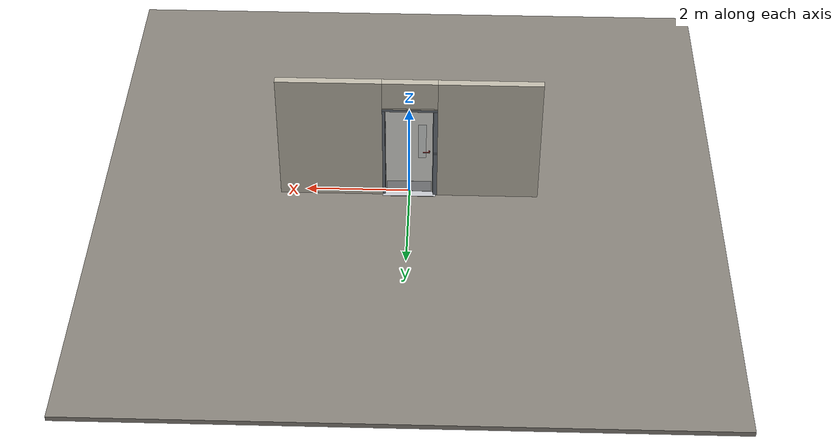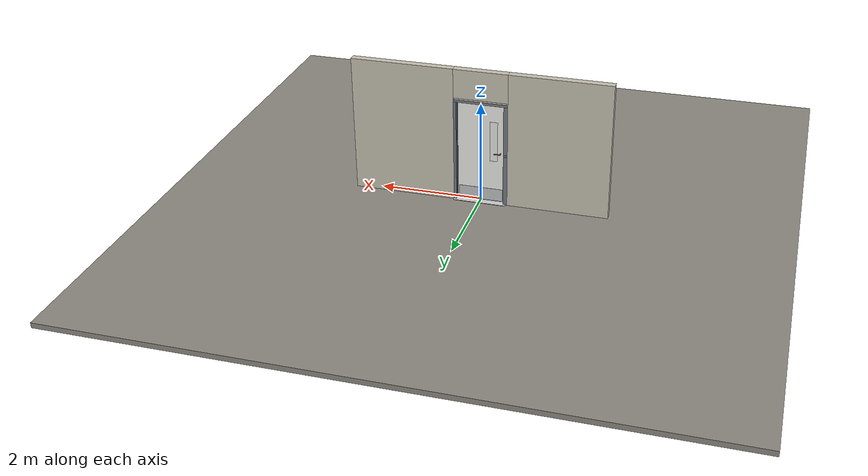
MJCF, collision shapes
<?xml version="1.0" ?>
<mujoco model="db0155_swing_single_full">
  <compiler angle="radian" meshdir="../../hardware" texturedir="../../textures" autolimits="true" inertiafromgeom="false"/>
  <option timestep="0.002" integrator="implicitfast" cone="elliptic" impratio="10" noslip_iterations="3">
    <flag multiccd="enable"/>
  </option>
  <size memory="16M"/>
  <default>
    <geom condim="4" solref="0.005 1" solimp="0.95 0.99 0.001"/>
    <joint solreflimit="0.005 1" solimplimit="0.95 0.99 0.001"/>
    <tendon solreflimit="0.005 1"/>
    <equality solref="0.002 1"/>
  </default>
  <visual>
    <headlight ambient="0.4 0.4 0.4" diffuse="0.7 0.7 0.7" specular="0.2 0.2 0.2"/>
    <quality shadowsize="4096"/>
    <map znear="0.01" zfar="60"/>
  </visual>
  <asset>
    <mesh name="hinge_e22b26c0c1" file="hinge_e22b26c0c1.obj"/>
    <mesh name="hinge_jamb_e1d088f8dc" file="hinge_jamb_e1d088f8dc.obj"/>
    <mesh name="lever_9f02b544cf" file="lever_9f02b544cf.obj"/>
    <material name="mat_floor" rgba="0.55 0.53 0.5 1" specular="0.2" shininess="0.15" reflectance="0"/>
    <material name="mat_wall" rgba="0.78 0.76 0.7 1" specular="0.2" shininess="0.1" reflectance="0"/>
    <material name="mat_leaf" rgba="0.93 0.93 0.91 1" specular="0.23" shininess="0.58" reflectance="0.02"/>
    <material name="mat_glass" rgba="0.85 0.92 0.95 0.25" specular="0.2" shininess="0.95" reflectance="0.1"/>
    <material name="mat_hinge" rgba="0.65 0.66 0.68 1" specular="0.74" shininess="0.5" reflectance="0.36"/>
    <material name="mat_op_nickel_satin" rgba="0.72 0.7 0.66 1" specular="0.8" shininess="0.65" reflectance="0.4"/>
    <material name="mat_trim" rgba="0.85 0.66 0.3 1" specular="0.8" shininess="0.75" reflectance="0.4"/>
    <material name="mat_keyway" rgba="0.05 0.05 0.05 1" specular="0.2" shininess="0.5" reflectance="0"/>
    <material name="mat_bolt" rgba="0.85 0.66 0.3 1" specular="0.8" shininess="0.75" reflectance="0.4"/>
    <material name="mat_frame" rgba="0.45 0.48 0.52 1" specular="0.32" shininess="0.6" reflectance="0.08"/>
    <material name="mat_threshold" rgba="0.8 0.81 0.83 1" specular="0.8" shininess="0.6" reflectance="0.4"/>
    <material name="mat_kick" rgba="0.75 0.76 0.77 1" specular="0.8" shininess="0.65" reflectance="0.4"/>
    <texture name="skybox" type="skybox" builtin="gradient" rgb1="0.6 0.7 0.85" rgb2="0.9 0.92 0.95" width="256" height="256"/>
  </asset>
  <worldbody>
    <light name="sun" pos="1.5 -2.5 4" dir="-0.3 0.5 -0.8" directional="true" diffuse="0.8 0.8 0.8" specular="0.3 0.3 0.3" castshadow="true"/>
    <light name="fill" pos="-1.5 2.5 3" dir="0.3 -0.5 -0.7" directional="true" diffuse="0.35 0.35 0.4" castshadow="false"/>
    <camera name="robot_view" pos="0 -2.498687 1.734312" xyaxes="1 0 0 0 0.26963 0.962964" fovy="52"/>
    <camera name="far_view" pos="0 2.585687 1.734312" xyaxes="-1 0 0 0 -0.26963 0.962964" fovy="52"/>
    <camera name="iso" pos="-1.932062 -2.091938 2.141063" xyaxes="0.741536 -0.670913 0 0.242917 0.268487 0.932151" fovy="46"/>
    <camera name="detail_handle" pos="-0.1065 -0.877 1.32" xyaxes="0.97561 0.219512 0 -0.070934 0.315262 0.94635" fovy="38"/>
    <geom name="floor" type="box" size="6 6 0.05" pos="0 0 -0.05" material="mat_floor" group="0" contype="1" conaffinity="1" friction="0.8 0.005 0.0001" density="2400"/>
    <geom name="wall_left" type="box" size="0.97975 0.0725 1.35" pos="-1.52025 0.0435 1.35" material="mat_wall" group="0" contype="1" conaffinity="1" friction="0.6 0.005 0.0001" density="800"/>
    <geom name="wall_right" type="box" size="0.99475 0.0725 1.35" pos="1.50525 0.0435 1.35" material="mat_wall" group="0" contype="1" conaffinity="1" friction="0.6 0.005 0.0001" density="800"/>
    <geom name="wall_header" type="box" size="0.5255 0.0725 0.2875" pos="-0.015 0.0435 2.4125" material="mat_wall" group="0" contype="1" conaffinity="1" friction="0.6 0.005 0.0001" density="800"/>
    <geom name="hinge_0_jamb" type="mesh" mesh="hinge_jamb_e1d088f8dc" pos="0.4575 -0.029 0.259" quat="0 0 1 0" material="mat_hinge" group="1" contype="0" conaffinity="0" density="7850"/>
    <geom name="hinge_1_jamb" type="mesh" mesh="hinge_jamb_e1d088f8dc" pos="0.4575 -0.029 1.025" quat="0 0 1 0" material="mat_hinge" group="1" contype="0" conaffinity="0" density="7850"/>
    <geom name="hinge_2_jamb" type="mesh" mesh="hinge_jamb_e1d088f8dc" pos="0.4575 -0.029 1.861" quat="0 0 1 0" material="mat_hinge" group="1" contype="0" conaffinity="0" density="7850"/>
    <geom name="jamb_hinge" type="box" size="0.025 0.0725 1.0225" pos="0.4855 0.0435 1.0225" material="mat_frame" group="0" contype="1" conaffinity="1" friction="0.6 0.005 0.0001" density="300"/>
    <geom name="strike_1040_wall_n" type="box" size="0.04 0.05325 0.0183" pos="-0.5005 0.06275 1.04" material="mat_frame" group="0" contype="1" conaffinity="1" friction="0.6 0.005 0.0001" density="300"/>
    <geom name="strike_1040_wall_p" type="box" size="0.04 0.008 0.0183" pos="-0.5005 -0.0175 1.04" material="mat_frame" group="0" contype="1" conaffinity="1" friction="0.6 0.005 0.0001" density="300"/>
    <geom name="strike_1040_ramp" type="box" size="0.04 0.018028 0.0183" pos="-0.503782 -0.018312 1.04" quat="0.957092 0 0 -0.289784" material="mat_frame" group="0" contype="1" conaffinity="1" friction="0.12 0.005 0.0001" density="300"/>
    <geom name="strike_1040_back" type="box" size="0.0285 0.0095 0.0183" pos="-0.512 0 1.04" material="mat_frame" group="0" contype="1" conaffinity="1" friction="0.6 0.005 0.0001" density="300"/>
    <geom name="jamb_strike_0" type="box" size="0.04 0.0725 0.51085" pos="-0.5005 0.0435 0.51085" material="mat_frame" group="0" contype="1" conaffinity="1" friction="0.6 0.005 0.0001" density="300"/>
    <geom name="jamb_strike_1" type="box" size="0.04 0.0725 0.49335" pos="-0.5005 0.0435 1.55165" material="mat_frame" group="0" contype="1" conaffinity="1" friction="0.6 0.005 0.0001" density="300"/>
    <geom name="jamb_head" type="box" size="0.5255 0.0725 0.025" pos="-0.015 0.0435 2.07" material="mat_frame" group="0" contype="1" conaffinity="1" friction="0.6 0.005 0.0001" density="300"/>
    <geom name="head_stud" type="box" size="0.5255 0.0725 0.015" pos="-0.015 0.0435 2.11" material="mat_wall" group="0" contype="1" conaffinity="1" friction="0.6 0.005 0.0001" density="500"/>
    <geom name="stop_hinge" type="box" size="0.0055 0.016 1.0225" pos="0.455 0.0385 1.0225" material="mat_frame" group="0" contype="1" conaffinity="1" friction="0.6 0.005 0.0001" density="300"/>
    <geom name="stop_strike" type="box" size="0.0055 0.016 1.0225" pos="-0.455 0.0385 1.0225" material="mat_frame" group="0" contype="1" conaffinity="1" friction="0.6 0.005 0.0001" density="300"/>
    <geom name="stop_head" type="box" size="0.4605 0.016 0.0055" pos="0 0.0385 2.0395" material="mat_frame" group="0" contype="1" conaffinity="1" friction="0.6 0.005 0.0001" density="300"/>
    <geom name="threshold" type="box" size="0.5105 0.1225 0.004" pos="0 0.0435 0.004" material="mat_threshold" group="0" contype="1" conaffinity="1" friction="0.6 0.005 0.0001" density="2700"/>
    <site name="approach_point" pos="0 -1.5 0" quat="1 0 0 0" size="0.05" rgba="0.2 0.9 0.2 0.5" group="4"/>
    <site name="goal_point" pos="0 1.5 0" quat="1 0 0 0" size="0.05" rgba="0.2 0.9 0.2 0.5" group="4"/>
    <site name="door_plane_center" pos="0 0 1.0225" quat="1 0 0 0" size="0.02" rgba="0.2 0.9 0.2 0.5" group="4"/>
    <body name="leaf" pos="0.4605 0 0">
      <inertial pos="-0.452929 0.001067 0.97317" mass="46.625276" quat="0.50074 -0.500145 -0.498303 -0.500808" diaginertia="3.333396183 17.191735612 20.507978095"/>
      <joint name="leaf_hinge" type="hinge" axis="0 0 1" pos="-0.003 -0.029 0" limited="true" range="0 1.832596" damping="0.30611" frictionloss="0.262084" armature="0.02"/>
      <geom name="leaf_slab" type="box" size="0.457 0.022 1.016" pos="-0.46 0 1.025" material="mat_leaf" group="0" contype="1" conaffinity="1" friction="0.4 0.005 0.0001" density="1"/>
      <geom name="leaf_glass_0" type="box" size="0.075 0.0228 0.4064" pos="-0.71146 0 1.26884" material="mat_glass" group="1" contype="0" conaffinity="0" density="1"/>
      <geom name="hinge_0" type="mesh" mesh="hinge_e22b26c0c1" pos="-0.003 -0.029 0.259" quat="0 0 1 0" material="mat_hinge" group="1" contype="0" conaffinity="0" density="7850"/>
      <geom name="hinge_1" type="mesh" mesh="hinge_e22b26c0c1" pos="-0.003 -0.029 1.025" quat="0 0 1 0" material="mat_hinge" group="1" contype="0" conaffinity="0" density="7850"/>
      <geom name="hinge_2" type="mesh" mesh="hinge_e22b26c0c1" pos="-0.003 -0.029 1.861" quat="0 0 1 0" material="mat_hinge" group="1" contype="0" conaffinity="0" density="7850"/>
      <geom name="leaf_latch_bolt_faceplate" type="box" size="0.0006 0.014 0.0283" pos="-0.9164 0 1.04" material="mat_bolt" group="1" contype="0" conaffinity="0" density="8500"/>
      <geom name="kick_plate_p" type="box" size="0.427 0.0008 0.125" pos="-0.46 0.0228 0.144" material="mat_kick" group="2" contype="0" conaffinity="0" density="7900"/>
      <site name="leaf_edge_mid" pos="-0.917 0 1.016" quat="1 0 0 0" size="0.02" rgba="0.2 0.9 0.2 0.5" group="4"/>
      <body name="leaf_handle" pos="-0.847 0 1.04">
        <inertial pos="0.027758 -0.000956 0" mass="1.005882" quat="0.702403 0 0 -0.71178" diaginertia="0.001794484 0.003806886 0.005422316"/>
        <joint name="leaf_handle_hinge" type="hinge" axis="0 1 0" limited="true" range="0 0.06" damping="0.245633" frictionloss="0.048" stiffness="1.2" springref="-0.458333" armature="0.01"/>
        <geom name="leaf_handle_spindle" type="cylinder" size="0.006 0.03" pos="0 0 0" quat="0.707107 -0.707107 0 0" material="mat_op_nickel_satin" group="1" contype="0" conaffinity="0" density="7850"/>
        <geom name="leaf_handle_lever_n" type="mesh" mesh="lever_9f02b544cf" pos="0 -0.022 0" quat="0 0 -0.707107 0.707107" material="mat_op_nickel_satin" group="1" contype="0" conaffinity="0" density="3000"/>
        <geom name="leaf_handle_lever_col_n" type="capsule" size="0.0095 0.053" pos="0.0625 -0.077 0" quat="0.707107 0 0.707107 0" material="mat_op_nickel_satin" group="3" contype="1" conaffinity="1" rgba="0.8 0.3 0.3 0.25" friction="0.7 0.01 0.0001" density="3000"/>
        <geom name="leaf_handle_hub_col_n" type="cylinder" size="0.012 0.022" pos="0 -0.052 0" quat="0.707107 -0.707107 0 0" material="mat_op_nickel_satin" group="3" contype="1" conaffinity="1" rgba="0.8 0.3 0.3 0.25" friction="0.6 0.005 0.0001" density="3000"/>
        <geom name="leaf_handle_cylinder_n" type="cylinder" size="0.0085 0.006" pos="0 -0.0845 0" quat="0.707107 -0.707107 0 0" material="mat_trim" group="1" contype="0" conaffinity="0" density="7100"/>
        <geom name="leaf_handle_keyway_n" type="box" size="0.0012 0.0008 0.006" pos="0 -0.091 0" material="mat_keyway" group="1" contype="0" conaffinity="0" density="7100"/>
        <geom name="leaf_handle_lever_p" type="mesh" mesh="lever_9f02b544cf" pos="0 0.022 0" quat="0 0 0.707107 0.707107" material="mat_op_nickel_satin" group="1" contype="0" conaffinity="0" density="3000"/>
        <geom name="leaf_handle_lever_col_p" type="capsule" size="0.0095 0.053" pos="0.0625 0.077 0" quat="0.707107 0 0.707107 0" material="mat_op_nickel_satin" group="3" contype="1" conaffinity="1" rgba="0.8 0.3 0.3 0.25" friction="0.7 0.01 0.0001" density="3000"/>
        <geom name="leaf_handle_hub_col_p" type="cylinder" size="0.012 0.022" pos="0 0.052 0" quat="0.707107 -0.707107 0 0" material="mat_op_nickel_satin" group="3" contype="1" conaffinity="1" rgba="0.8 0.3 0.3 0.25" friction="0.6 0.005 0.0001" density="3000"/>
        <geom name="leaf_handle_turn_button_p" type="cylinder" size="0.006 0.005" pos="0 0.0875 0" quat="0.707107 -0.707107 0 0" material="mat_trim" group="1" contype="0" conaffinity="0" density="7100"/>
        <site name="leaf_handle_grip_n" pos="0.1 -0.077 0" quat="1 0 0 0" size="0.012" rgba="0.2 0.9 0.2 0.5" group="4"/>
        <site name="leaf_handle_grip_p" pos="0.1 0.077 0" quat="1 0 0 0" size="0.012" rgba="0.2 0.9 0.2 0.5" group="4"/>
      </body>
      <body name="leaf_latch_bolt" pos="-0.917 0 1.04">
        <inertial pos="0.0055 0 0" mass="0.074627" quat="0.92388 0.382683 0 0" diaginertia="0.000002271 0.000013255 0.000013255"/>
        <joint name="leaf_latch_bolt_slide" type="slide" axis="1 0 0" limited="true" range="0 0.019" damping="2" frictionloss="0.3" stiffness="600" springref="-0.01" armature="0.1"/>
        <geom name="leaf_latch_bolt_capsule" type="capsule" size="0.008 0.0165" pos="0.0055 0 0" quat="0.707107 0 -0.707107 0" material="mat_bolt" group="0" contype="1" conaffinity="1" friction="0.2 0.005 0.0001" density="8500"/>
      </body>
    </body>
  </worldbody>
  <tendon>
    <fixed name="leaf_latch_bolt_coupling" limited="true" range="0 10">
      <joint joint="leaf_latch_bolt_slide" coef="1"/>
      <joint joint="leaf_handle_hinge" coef="-0.020879"/>
    </fixed>
  </tendon>
  <sensor>
    <jointpos name="leaf_hinge_pos" joint="leaf_hinge"/>
    <jointvel name="leaf_hinge_vel" joint="leaf_hinge"/>
    <jointpos name="leaf_handle_hinge_pos" joint="leaf_handle_hinge"/>
    <jointvel name="leaf_handle_hinge_vel" joint="leaf_handle_hinge"/>
    <jointpos name="leaf_latch_bolt_slide_pos" joint="leaf_latch_bolt_slide"/>
    <jointvel name="leaf_latch_bolt_slide_vel" joint="leaf_latch_bolt_slide"/>
  </sensor>
</mujoco>
